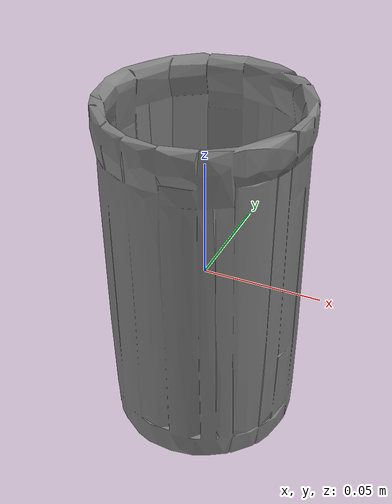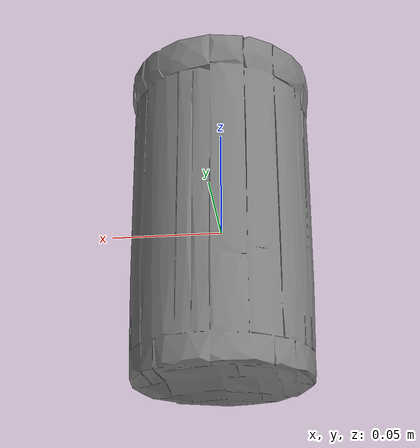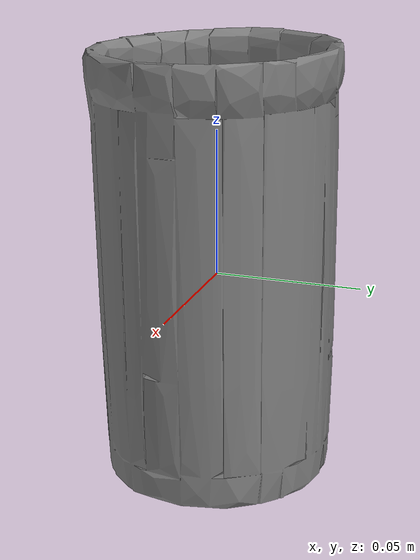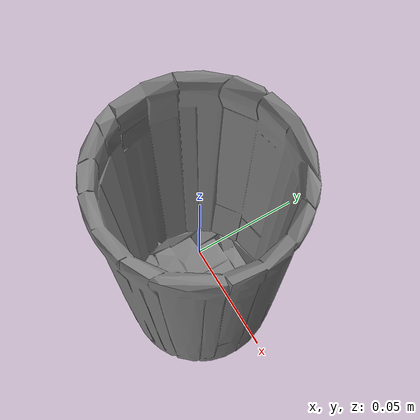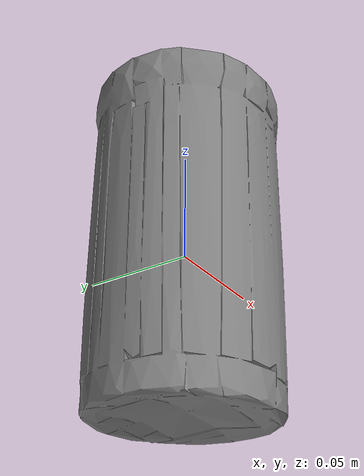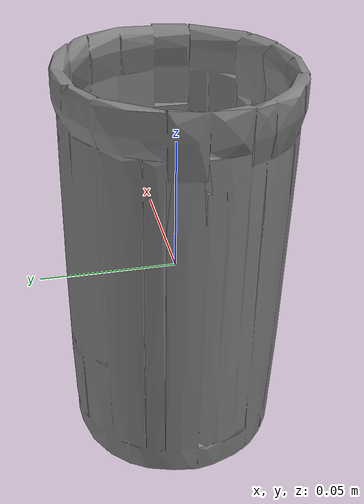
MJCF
<mujoco model="cup_BIA_Cordon_Bleu_White_Porcelain_Utensil_Holder_900028_M">
  <default>
    <default class="visual">
      <geom group="2" type="mesh" contype="0" conaffinity="0" />
    </default>
    <default class="collision">
      <geom group="3" type="mesh" />
    </default>
  </default>
  <asset>
    <mesh file="cup_BIA_Cordon_Bleu_White_Porcelain_Utensil_Holder_900028_M.stl" />
    <mesh file="cup_BIA_Cordon_Bleu_White_Porcelain_Utensil_Holder_900028_M_collision_0.stl" />
    <mesh file="cup_BIA_Cordon_Bleu_White_Porcelain_Utensil_Holder_900028_M_collision_1.stl" />
    <mesh file="cup_BIA_Cordon_Bleu_White_Porcelain_Utensil_Holder_900028_M_collision_2.stl" />
    <mesh file="cup_BIA_Cordon_Bleu_White_Porcelain_Utensil_Holder_900028_M_collision_3.stl" />
    <mesh file="cup_BIA_Cordon_Bleu_White_Porcelain_Utensil_Holder_900028_M_collision_4.stl" />
    <mesh file="cup_BIA_Cordon_Bleu_White_Porcelain_Utensil_Holder_900028_M_collision_5.stl" />
    <mesh file="cup_BIA_Cordon_Bleu_White_Porcelain_Utensil_Holder_900028_M_collision_6.stl" />
    <mesh file="cup_BIA_Cordon_Bleu_White_Porcelain_Utensil_Holder_900028_M_collision_7.stl" />
    <mesh file="cup_BIA_Cordon_Bleu_White_Porcelain_Utensil_Holder_900028_M_collision_8.stl" />
    <mesh file="cup_BIA_Cordon_Bleu_White_Porcelain_Utensil_Holder_900028_M_collision_9.stl" />
    <mesh file="cup_BIA_Cordon_Bleu_White_Porcelain_Utensil_Holder_900028_M_collision_10.stl" />
    <mesh file="cup_BIA_Cordon_Bleu_White_Porcelain_Utensil_Holder_900028_M_collision_11.stl" />
    <mesh file="cup_BIA_Cordon_Bleu_White_Porcelain_Utensil_Holder_900028_M_collision_12.stl" />
    <mesh file="cup_BIA_Cordon_Bleu_White_Porcelain_Utensil_Holder_900028_M_collision_13.stl" />
    <mesh file="cup_BIA_Cordon_Bleu_White_Porcelain_Utensil_Holder_900028_M_collision_14.stl" />
    <mesh file="cup_BIA_Cordon_Bleu_White_Porcelain_Utensil_Holder_900028_M_collision_15.stl" />
  </asset>
  <worldbody>
    <body name="cup_BIA_Cordon_Bleu_White_Porcelain_Utensil_Holder_900028_M">
      <geom mesh="cup_BIA_Cordon_Bleu_White_Porcelain_Utensil_Holder_900028_M" class="visual" />
      <geom mesh="cup_BIA_Cordon_Bleu_White_Porcelain_Utensil_Holder_900028_M_collision_0" class="collision" />
      <geom mesh="cup_BIA_Cordon_Bleu_White_Porcelain_Utensil_Holder_900028_M_collision_1" class="collision" />
      <geom mesh="cup_BIA_Cordon_Bleu_White_Porcelain_Utensil_Holder_900028_M_collision_2" class="collision" />
      <geom mesh="cup_BIA_Cordon_Bleu_White_Porcelain_Utensil_Holder_900028_M_collision_3" class="collision" />
      <geom mesh="cup_BIA_Cordon_Bleu_White_Porcelain_Utensil_Holder_900028_M_collision_4" class="collision" />
      <geom mesh="cup_BIA_Cordon_Bleu_White_Porcelain_Utensil_Holder_900028_M_collision_5" class="collision" />
      <geom mesh="cup_BIA_Cordon_Bleu_White_Porcelain_Utensil_Holder_900028_M_collision_6" class="collision" />
      <geom mesh="cup_BIA_Cordon_Bleu_White_Porcelain_Utensil_Holder_900028_M_collision_7" class="collision" />
      <geom mesh="cup_BIA_Cordon_Bleu_White_Porcelain_Utensil_Holder_900028_M_collision_8" class="collision" />
      <geom mesh="cup_BIA_Cordon_Bleu_White_Porcelain_Utensil_Holder_900028_M_collision_9" class="collision" />
      <geom mesh="cup_BIA_Cordon_Bleu_White_Porcelain_Utensil_Holder_900028_M_collision_10" class="collision" />
      <geom mesh="cup_BIA_Cordon_Bleu_White_Porcelain_Utensil_Holder_900028_M_collision_11" class="collision" />
      <geom mesh="cup_BIA_Cordon_Bleu_White_Porcelain_Utensil_Holder_900028_M_collision_12" class="collision" />
      <geom mesh="cup_BIA_Cordon_Bleu_White_Porcelain_Utensil_Holder_900028_M_collision_13" class="collision" />
      <geom mesh="cup_BIA_Cordon_Bleu_White_Porcelain_Utensil_Holder_900028_M_collision_14" class="collision" />
      <geom mesh="cup_BIA_Cordon_Bleu_White_Porcelain_Utensil_Holder_900028_M_collision_15" class="collision" />
    </body>
  </worldbody>
</mujoco>
